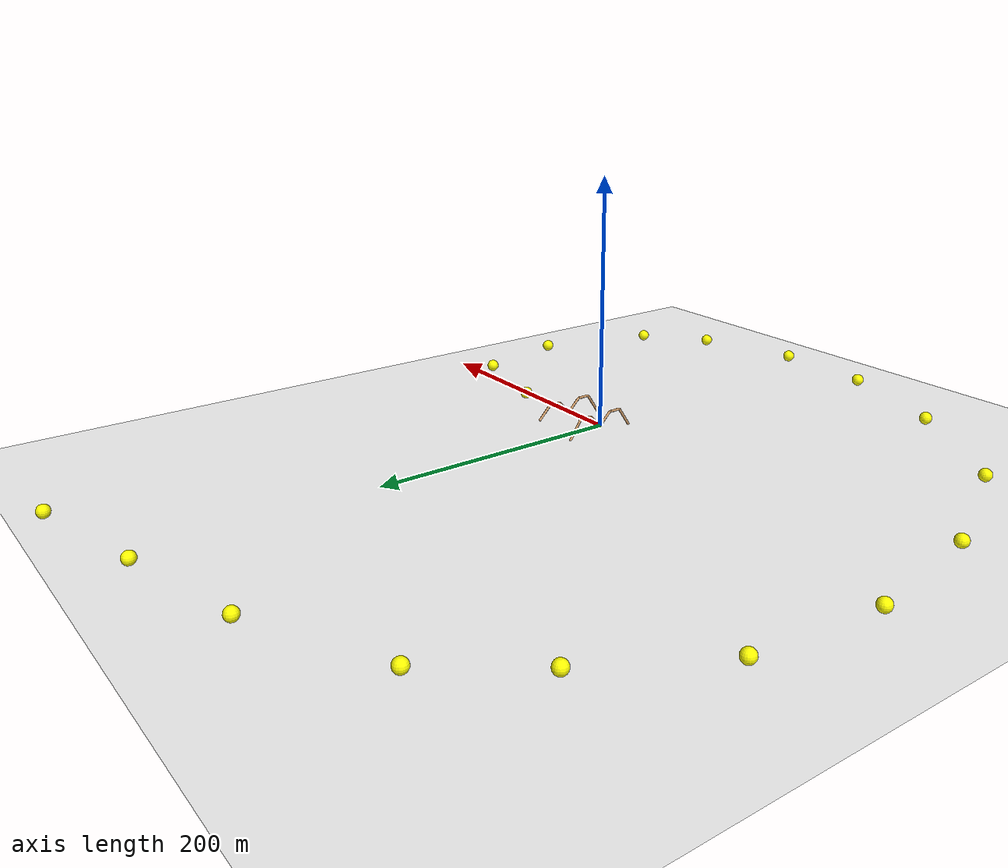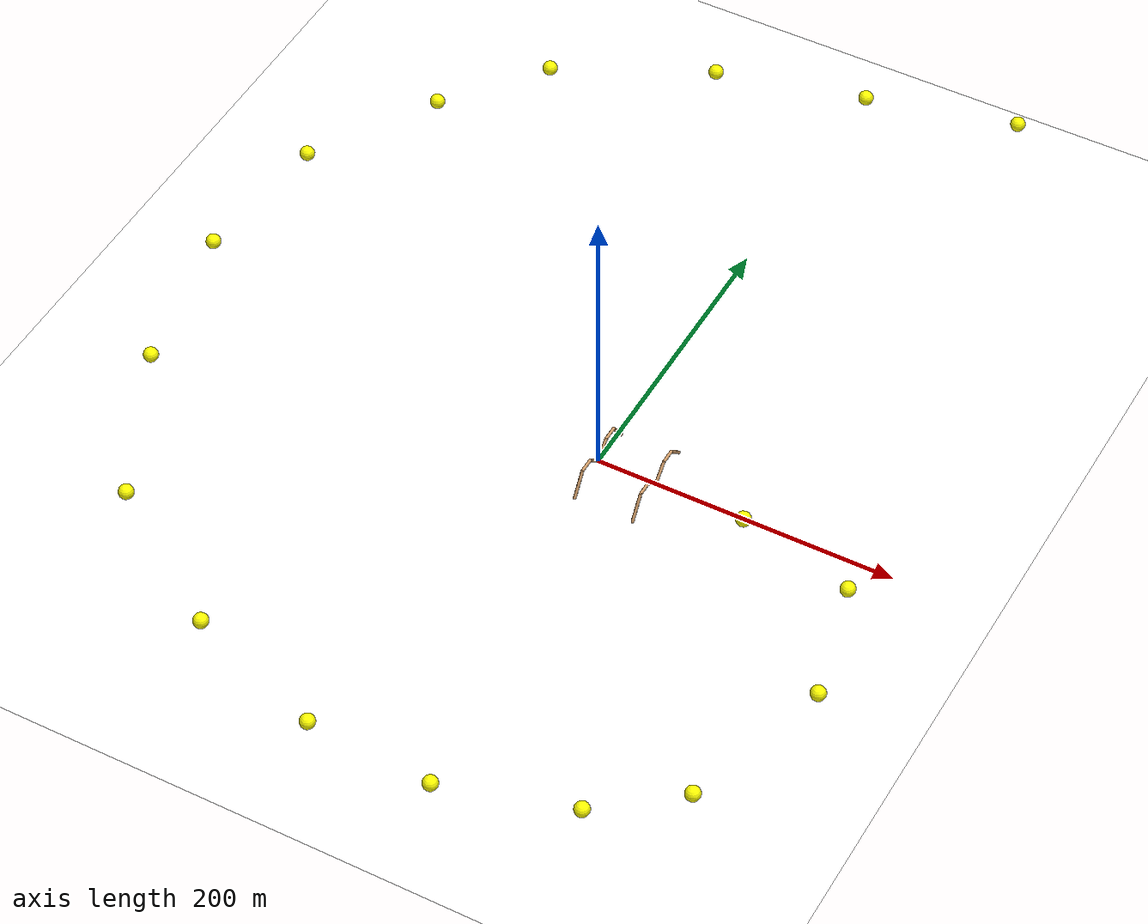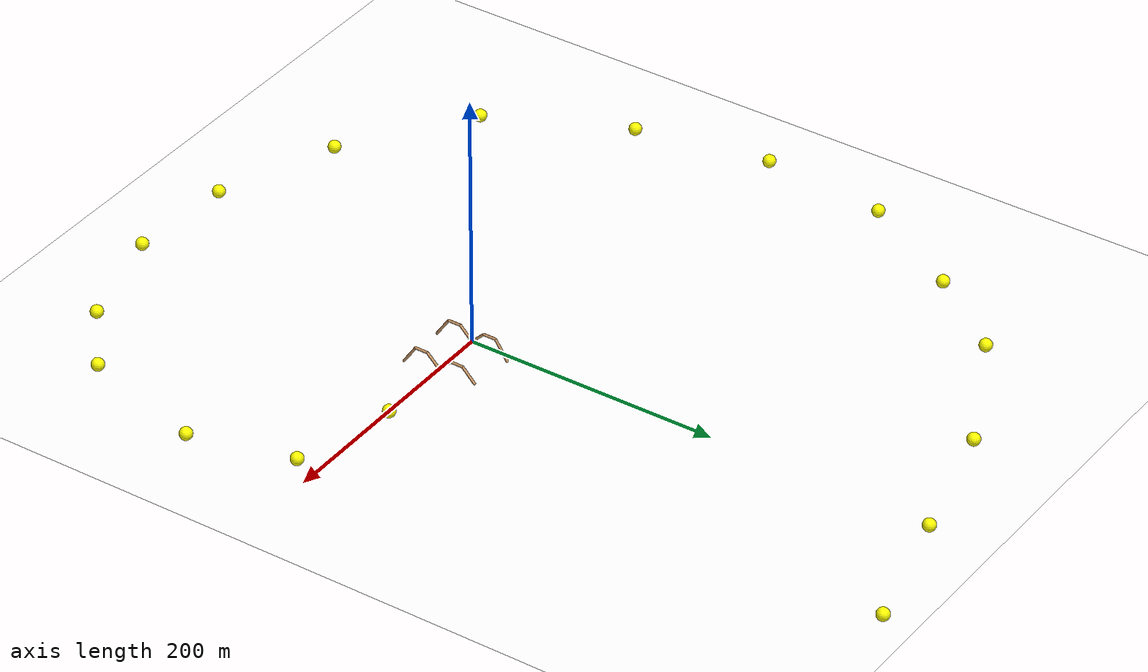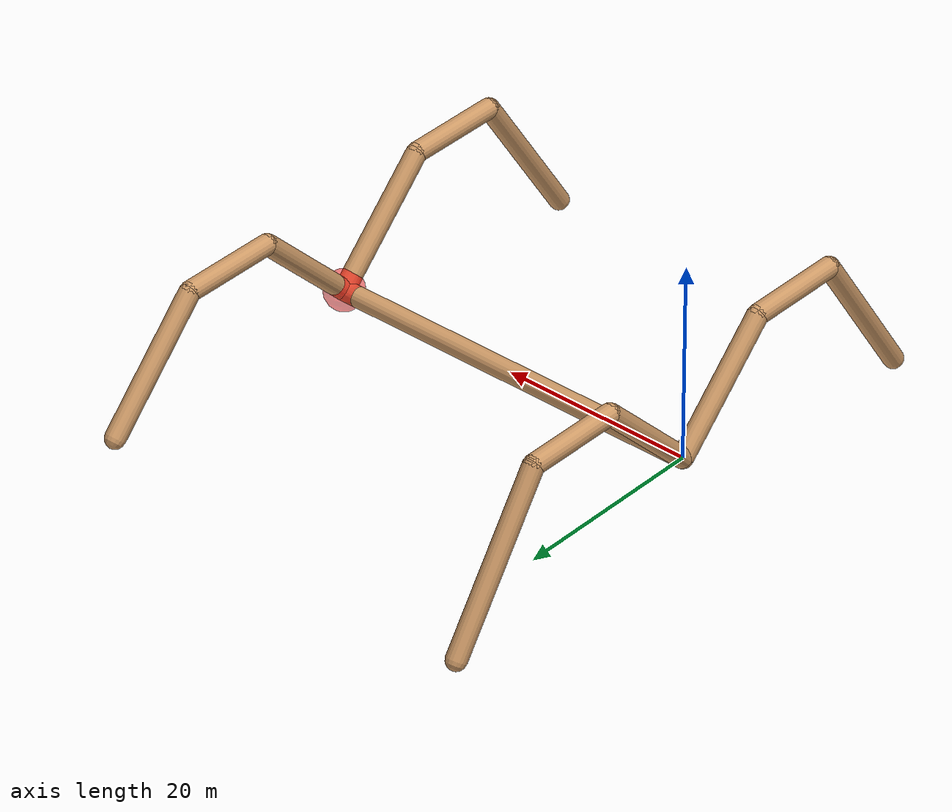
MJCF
<mujoco>
    <option timestep="0.02" viscosity="0" density="0" gravity="0 0 -9.81" collision="dynamic"/>
    <compiler coordinate="global" angle="degree"/>
    <default>
        <geom rgba=".8 .6 .4 1"/>
        <joint limited="true"/>
    </default>
    <asset>
        <texture type="skybox" builtin="gradient" rgb1="1 1 1" rgb2=".6 .8 1" width="256" height="256"/>
        <texture type="2d" name="checkers" builtin="checker" width="256" height="256" rgb1="0 0 0" rgb2="1 1 1"/>
        <material name="checker_mat" texture="checkers" texrepeat="15 15"/>
    </asset>
    <visual>
        <global offwidth="800" offheight="800"/>
    </visual>
    <worldbody>
        <camera name='targeting' pos='1 1 2' mode='targetbodycom' target='body_0'/>

        <geom name="floor" material="checker_mat" pos="0 0 -10" size="420 420 .125" rgba="1 1 1 1" type="plane"
              condim="6" friction="5 0.5 0.1"/>

        <site name="reference_0" pos="100 0 0" size="5 5 5" type="sphere" rgba="255 255 0 1"/>
        <site name="reference_1" pos="180 -20 0" size="5 5 5" type="sphere" rgba="255 255 0 1"/>
        <site name="reference_2" pos="200 -100 0" size="5 5 5" type="sphere" rgba="255 255 0 1"/>
        <site name="reference_3" pos="170 -200 0" size="5 5 5" type="sphere" rgba="255 255 0 1"/>
        <site name="reference_4" pos="120 -240 0" size="5 5 5" type="sphere" rgba="255 255 0 1"/>
        <site name="reference_5" pos="35 -265 0" size="5 5 5" type="sphere" rgba="255 255 0 1"/>
        <site name="reference_6" pos="-50 -260 0" size="5 5 5" type="sphere" rgba="255 255 0 1"/>
        <site name="reference_7" pos="-145 -225 0" size="5 5 5" type="sphere" rgba="255 255 0 1"/>
        <site name="reference_8" pos="-240 -160 0" size="5 5 5" type="sphere" rgba="255 255 0 1"/>
        <site name="reference_9" pos="-240 -160 0" size="5 5 5" type="sphere" rgba="255 255 0 1"/>
        <site name="reference_10" pos="-290 -55 0" size="5 5 5" type="sphere" rgba="255 255 0 1"/>
        <site name="reference_11" pos="-310 50 0" size="5 5 5" type="sphere" rgba="255 255 0 1"/>
        <site name="reference_12" pos="-300 150 0" size="5 5 5" type="sphere" rgba="255 255 0 1"/>
        <site name="reference_13" pos="-250 235 0" size="5 5 5" type="sphere" rgba="255 255 0 1"/>
        <site name="reference_14" pos="-200 300 0" size="5 5 5" type="sphere" rgba="255 255 0 1"/>
        <site name="reference_15" pos="-100 350 0" size="5 5 5" type="sphere" rgba="255 255 0 1"/>
        <site name="reference_16" pos="0 375 0" size="5 5 5" type="sphere" rgba="255 255 0 1"/>
        <site name="reference_17" pos="100 400 0" size="5 5 5" type="sphere" rgba="255 255 0 1"/>

        <body name="body_0">
            <freejoint/>
            <site name="head" size="2 2 2" rgba="1 0 0 0.5" pos="40 0 0"/>
            <geom name="geom_0" type="sphere" pos="0.00 0.00 0.20" size="0.3"/>
            <body name="body_1">
                <!--arms-->
                <geom name="geom_1" type="capsule" fromto="0.00 0.00 0.00 0.00 10.0 10.0" size="01.00000"/>
                <geom name="geom_2" type="capsule" fromto="0.00 0.00 0.00 0.00 -10.0 10.0" size="01.00000"/>
                <!--spine-->
                <geom name="geom_3" type="capsule" fromto="0.00 0.00 0.00 40.0 0.00 0.00" size="01.00000"/>
                <!--arms-->
                <geom name="geom_4" type="capsule" fromto="40.0 0.00 0.00 40.0 10.0 10.0" size="01.00000"/>
                <geom name="geom_5" type="capsule" fromto="40.0 0.00 0.00 40.0 -10.0 10.0" size="01.00000"/>

                <!--first leg pair-->
                <!--upper leg-->
                <body name="body_2">
                    <joint type="hinge" pos="0 -10 10" axis="0 0 1" limited="true" range="-45 45" name="motor_0"/>
                    <geom name="geom_6" type="capsule" fromto="0.00 -10.0 10.0 0.00 -20.0 10.0" size="01.00000"/>
                    <!--lower leg-->
                    <body name="body_3">
                        <joint type="hinge" pos="0 -20 10" axis="1 0 0" limited="true" range="-20 45" name="motor_1"/>
                        <geom name="geom_7" type="capsule" fromto="0.00 -20.0 10.0 0.00 -30.0 -5.0" size="01.00000"/>
                    </body>
                </body>
                <!--upper leg-->
                <body name="body_4">
                    <joint type="hinge" pos="0 10 10" axis="0 0 1" limited="true" range="-45 45" name="motor_2"/>
                    <geom name="geom_8" type="capsule" fromto="0.00 10.0 10.0 0.00 20.0 10.0" size="01.00000"/>
                    <!--lower leg-->
                    <body name="body_5">
                        <joint type="hinge" pos="0 20 10" axis="1 0 0" limited="true" range="-20 45" name="motor_3"/>
                        <geom name="geom_9" type="capsule" fromto="0.00 20.0 10.0 0.00 30.0 -5" size="01.00000"/>
                    </body>
                </body>

                <!--second leg pair-->
                <!--upper leg-->
                <body name="body_6">
                    <joint type="hinge" pos="40 -10 10" axis="0 0 1" limited="true" range="-45 45" name="motor_4"/>
                    <geom name="geom_10" type="capsule" fromto="40.0 -10.0 10.0 40.0 -20.0 10.0" size="01.00000"/>
                    <!--lower leg-->
                    <body name="body_7">
                        <joint type="hinge" pos="40 -20 10" axis="1 0 0" limited="true" range="-20 45" name="motor_5"/>
                        <geom name="geom_11" type="capsule" fromto="40.0 -20.0 10.0 40.0 -30.0 -5.0" size="01.00000"/>
                    </body>
                </body>
                <!--upper leg-->
                <body name="body_8">
                    <joint type="hinge" pos="40 10 10" axis="0 0 1" limited="true" range="-45 45" name="motor_6"/>
                    <geom name="geom_12" type="capsule" fromto="40.0 10.0 10.0 40.0 20.0 10.0" size="01.00000"/>
                    <!--lower leg-->
                    <body name="body_9">
                        <joint type="hinge" pos="40 20 10" axis="1 0 0" limited="true" range="-20 45" name="motor_7"/>
                        <geom name="geom_13" type="capsule" fromto="40.0 20.0 10.0 40.0 30.0 -0.5" size="01.00000"/>
                    </body>
                </body>
            </body>
        </body>
    </worldbody>

    <actuator>
        <motor name="motor_0" joint="motor_0" gear="100000"/>
        <motor name="motor_1" joint="motor_1" gear="100000"/>
        <motor name="motor_2" joint="motor_2" gear="100000"/>
        <motor name="motor_3" joint="motor_3" gear="100000"/>
        <motor name="motor_4" joint="motor_4" gear="100000"/>
        <motor name="motor_5" joint="motor_5" gear="100000"/>
        <motor name="motor_6" joint="motor_6" gear="100000"/>
        <motor name="motor_7" joint="motor_7" gear="100000"/>
    </actuator>
</mujoco>
